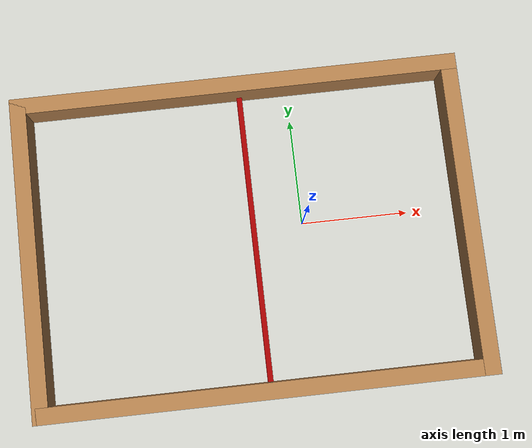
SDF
<?xml version='1.0'?>
<sdf version='1.7'>
  <model name='Final_track'>
    <pose>-0.505 -0.085 0 0 -0 0</pose>
    <link name='Wall_0'>
      <collision name='Wall_0_Collision'>
        <geometry>
          <box>
            <size>4.2 0.15 0.31</size>
          </box>
        </geometry>
        <pose>0 0 0.155 0 -0 0</pose>
      </collision>
      <visual name='Wall_0_Visual'>
        <pose>0 0 0.155 0 -0 0</pose>
        <geometry>
          <box>
            <size>4.2 0.15 0.31</size>
          </box>
        </geometry>
        <material>
          <script>
            <uri>file://media/materials/scripts/gazebo.material</uri>
            <name>Gazebo/Wood</name>
          </script>
          <ambient>1 1 1 1</ambient>
        </material>
        <meta>
          <layer>0</layer>
        </meta>
      </visual>
      <pose>0 -1.425 0 0 -0 0</pose>
    </link>
    <link name='Wall_12'>
      <collision name='Wall_12_Collision'>
        <geometry>
          <box>
            <size>2.9 0.05 0.1</size>
          </box>
        </geometry>
        <pose>0 0 0.05 0 -0 0</pose>
      </collision>
      <visual name='Wall_12_Visual'>
        <pose>0 0 0.05 0 -0 0</pose>
        <geometry>
          <box>
            <size>2.9 0.05 0.1</size>
          </box>
        </geometry>
        <material>
          <script>
            <uri>file://media/materials/scripts/gazebo.material</uri>
            <name>Gazebo/Grey</name>
          </script>
          <ambient>0.643137 0 0 1</ambient>
        </material>
        <meta>
          <layer>0</layer>
        </meta>
      </visual>
      <pose>0.045 0 0 0 -0 1.5708</pose>
    </link>
    <link name='Wall_3'>
      <collision name='Wall_3_Collision'>
        <geometry>
          <box>
            <size>3 0.15 0.31</size>
          </box>
        </geometry>
        <pose>0 0 0.155 0 -0 0</pose>
      </collision>
      <visual name='Wall_3_Visual'>
        <pose>0 0 0.155 0 -0 0</pose>
        <geometry>
          <box>
            <size>3 0.15 0.31</size>
          </box>
        </geometry>
        <material>
          <script>
            <uri>file://media/materials/scripts/gazebo.material</uri>
            <name>Gazebo/Wood</name>
          </script>
          <ambient>1 1 1 1</ambient>
        </material>
        <meta>
          <layer>0</layer>
        </meta>
      </visual>
      <pose>2.025 0 0 0 -0 1.5708</pose>
    </link>
    <link name='Wall_5'>
      <collision name='Wall_5_Collision'>
        <geometry>
          <box>
            <size>3 0.15 0.31</size>
          </box>
        </geometry>
        <pose>0 0 0.155 0 -0 0</pose>
      </collision>
      <visual name='Wall_5_Visual'>
        <pose>0 0 0.155 0 -0 0</pose>
        <geometry>
          <box>
            <size>3 0.15 0.31</size>
          </box>
        </geometry>
        <material>
          <script>
            <uri>file://media/materials/scripts/gazebo.material</uri>
            <name>Gazebo/Wood</name>
          </script>
          <ambient>1 1 1 1</ambient>
        </material>
        <meta>
          <layer>0</layer>
        </meta>
      </visual>
      <pose>-2.025 0 0 0 -0 1.5708</pose>
    </link>
    <link name='Wall_6'>
      <collision name='Wall_6_Collision'>
        <geometry>
          <box>
            <size>4.2 0.15 0.31</size>
          </box>
        </geometry>
        <pose>0 0 0.155 0 -0 0</pose>
      </collision>
      <visual name='Wall_6_Visual'>
        <pose>0 0 0.155 0 -0 0</pose>
        <geometry>
          <box>
            <size>4.2 0.15 0.31</size>
          </box>
        </geometry>
        <material>
          <script>
            <uri>file://media/materials/scripts/gazebo.material</uri>
            <name>Gazebo/Wood</name>
          </script>
          <ambient>1 1 1 1</ambient>
        </material>
        <meta>
          <layer>0</layer>
        </meta>
      </visual>
      <pose>0 1.425 0 0 -0 0</pose>
    </link>
    <static>1</static>
  </model>
</sdf>
